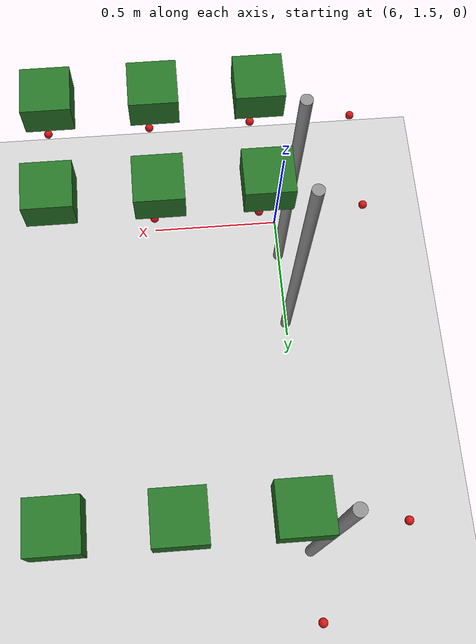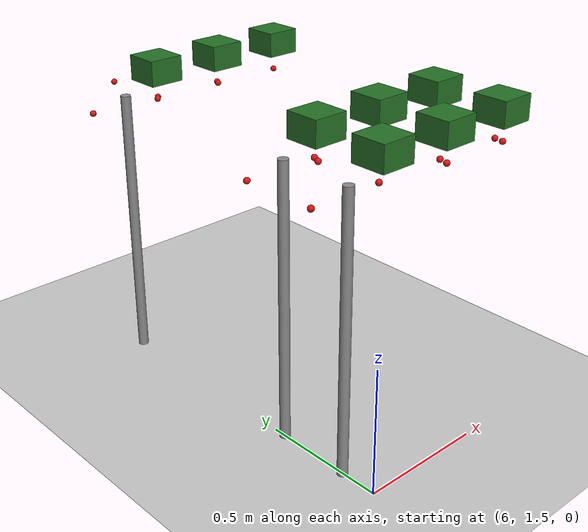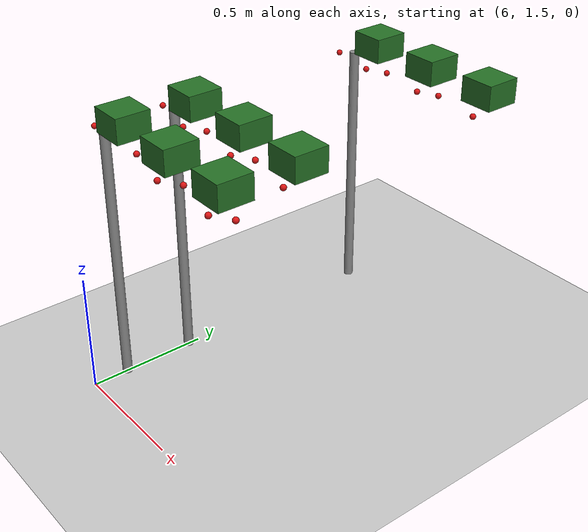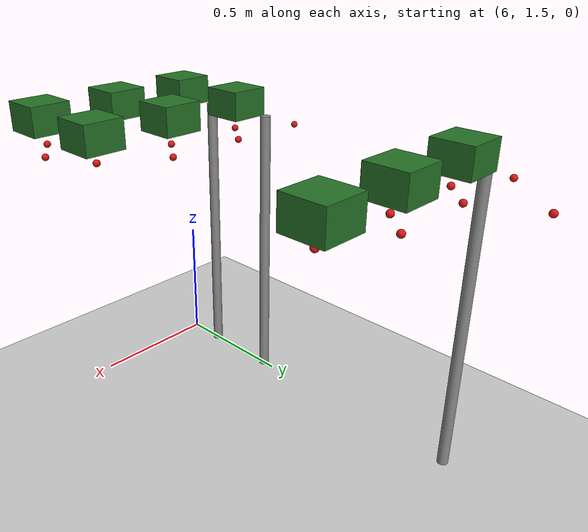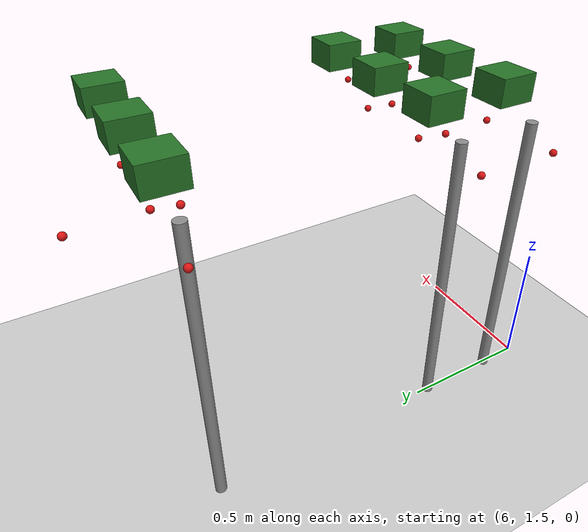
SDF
<sdf version="1.7">
 <world name="irish_polytunnel">
  <include><uri>model://sun</uri></include>
  <include><uri>model://ground_plane</uri></include>
  <model name="row1_L_post3">
   <static>true</static>
   <pose>6.000 1.650 0.550 0 0 0</pose>
   <link name="link">
    <collision name="collision">
     <geometry><cylinder><radius>0.02</radius><length>1.100</length></cylinder></geometry>
    </collision>
    <visual name="visual">
     <geometry><cylinder><radius>0.02</radius><length>1.100</length></cylinder></geometry>
     <material><ambient>0.5 0.5 0.5 1</ambient><diffuse>0.55 0.55 0.55 1</diffuse></material>
    </visual>
   </link>
  </model>
  <model name="row1_L_plant19_berry_1">
   <static>true</static>
   <pose>5.870 1.680 1.050 0 0 0</pose>
   <link name="link">
    <visual name="visual">
     <geometry><sphere><radius>0.012</radius></sphere></geometry>
     <material><ambient>0.75 0.05 0.05 1</ambient><diffuse>0.85 0.08 0.08 1</diffuse></material>
    </visual>
   </link>
  </model>
  <model name="row1_L_plant20_foliage">
   <static>true</static>
   <pose>6.150 1.650 1.180 0 0 0</pose>
   <link name="link">
    <visual name="visual">
     <geometry><box><size>0.14 0.14 0.10</size></box></geometry>
     <material><ambient>0.10 0.35 0.10 1</ambient><diffuse>0.15 0.45 0.15 1</diffuse></material>
    </visual>
   </link>
  </model>
  <model name="row1_L_plant20_berry_1">
   <static>true</static>
   <pose>6.170 1.680 1.050 0 0 0</pose>
   <link name="link">
    <visual name="visual">
     <geometry><sphere><radius>0.012</radius></sphere></geometry>
     <material><ambient>0.75 0.05 0.05 1</ambient><diffuse>0.85 0.08 0.08 1</diffuse></material>
    </visual>
   </link>
  </model>
  <model name="row1_L_plant21_foliage">
   <static>true</static>
   <pose>6.450 1.650 1.180 0 0 0</pose>
   <link name="link">
    <visual name="visual">
     <geometry><box><size>0.14 0.14 0.10</size></box></geometry>
     <material><ambient>0.10 0.35 0.10 1</ambient><diffuse>0.15 0.45 0.15 1</diffuse></material>
    </visual>
   </link>
  </model>
  <model name="row1_L_plant21_berry_0">
   <static>true</static>
   <pose>6.420 1.610 1.070 0 0 0</pose>
   <link name="link">
    <visual name="visual">
     <geometry><sphere><radius>0.012</radius></sphere></geometry>
     <material><ambient>0.75 0.05 0.05 1</ambient><diffuse>0.85 0.08 0.08 1</diffuse></material>
    </visual>
   </link>
  </model>
  <model name="row1_L_plant21_berry_1">
   <static>true</static>
   <pose>6.470 1.680 1.050 0 0 0</pose>
   <link name="link">
    <visual name="visual">
     <geometry><sphere><radius>0.012</radius></sphere></geometry>
     <material><ambient>0.75 0.05 0.05 1</ambient><diffuse>0.85 0.08 0.08 1</diffuse></material>
    </visual>
   </link>
  </model>
  <model name="row1_L_plant22_foliage">
   <static>true</static>
   <pose>6.750 1.650 1.180 0 0 0</pose>
   <link name="link">
    <visual name="visual">
     <geometry><box><size>0.14 0.14 0.10</size></box></geometry>
     <material><ambient>0.10 0.35 0.10 1</ambient><diffuse>0.15 0.45 0.15 1</diffuse></material>
    </visual>
   </link>
  </model>
  <model name="row1_L_plant22_berry_0">
   <static>true</static>
   <pose>6.720 1.610 1.070 0 0 0</pose>
   <link name="link">
    <visual name="visual">
     <geometry><sphere><radius>0.012</radius></sphere></geometry>
     <material><ambient>0.75 0.05 0.05 1</ambient><diffuse>0.85 0.08 0.08 1</diffuse></material>
    </visual>
   </link>
  </model>
  <model name="row1_L_plant22_berry_1">
   <static>true</static>
   <pose>6.770 1.680 1.050 0 0 0</pose>
   <link name="link">
    <visual name="visual">
     <geometry><sphere><radius>0.012</radius></sphere></geometry>
     <material><ambient>0.75 0.05 0.05 1</ambient><diffuse>0.85 0.08 0.08 1</diffuse></material>
    </visual>
   </link>
  </model>
  <model name="row2_L_post3">
   <static>true</static>
   <pose>6.000 2.850 0.550 0 0 0</pose>
   <link name="link">
    <collision name="collision">
     <geometry><cylinder><radius>0.02</radius><length>1.100</length></cylinder></geometry>
    </collision>
    <visual name="visual">
     <geometry><cylinder><radius>0.02</radius><length>1.100</length></cylinder></geometry>
     <material><ambient>0.5 0.5 0.5 1</ambient><diffuse>0.55 0.55 0.55 1</diffuse></material>
    </visual>
   </link>
  </model>
  <model name="row2_L_plant19_berry_1">
   <static>true</static>
   <pose>5.870 2.880 1.050 0 0 0</pose>
   <link name="link">
    <visual name="visual">
     <geometry><sphere><radius>0.012</radius></sphere></geometry>
     <material><ambient>0.75 0.05 0.05 1</ambient><diffuse>0.85 0.08 0.08 1</diffuse></material>
    </visual>
   </link>
  </model>
  <model name="row2_L_plant20_foliage">
   <static>true</static>
   <pose>6.150 2.850 1.180 0 0 0</pose>
   <link name="link">
    <visual name="visual">
     <geometry><box><size>0.14 0.14 0.10</size></box></geometry>
     <material><ambient>0.10 0.35 0.10 1</ambient><diffuse>0.15 0.45 0.15 1</diffuse></material>
    </visual>
   </link>
  </model>
  <model name="row2_L_plant20_berry_0">
   <static>true</static>
   <pose>6.120 2.810 1.070 0 0 0</pose>
   <link name="link">
    <visual name="visual">
     <geometry><sphere><radius>0.012</radius></sphere></geometry>
     <material><ambient>0.75 0.05 0.05 1</ambient><diffuse>0.85 0.08 0.08 1</diffuse></material>
    </visual>
   </link>
  </model>
  <model name="row2_L_plant20_berry_1">
   <static>true</static>
   <pose>6.170 2.880 1.050 0 0 0</pose>
   <link name="link">
    <visual name="visual">
     <geometry><sphere><radius>0.012</radius></sphere></geometry>
     <material><ambient>0.75 0.05 0.05 1</ambient><diffuse>0.85 0.08 0.08 1</diffuse></material>
    </visual>
   </link>
  </model>
  <model name="row2_L_plant21_foliage">
   <static>true</static>
   <pose>6.450 2.850 1.180 0 0 0</pose>
   <link name="link">
    <visual name="visual">
     <geometry><box><size>0.14 0.14 0.10</size></box></geometry>
     <material><ambient>0.10 0.35 0.10 1</ambient><diffuse>0.15 0.45 0.15 1</diffuse></material>
    </visual>
   </link>
  </model>
  <model name="row2_L_plant21_berry_0">
   <static>true</static>
   <pose>6.420 2.810 1.070 0 0 0</pose>
   <link name="link">
    <visual name="visual">
     <geometry><sphere><radius>0.012</radius></sphere></geometry>
     <material><ambient>0.75 0.05 0.05 1</ambient><diffuse>0.85 0.08 0.08 1</diffuse></material>
    </visual>
   </link>
  </model>
  <model name="row2_L_plant21_berry_1">
   <static>true</static>
   <pose>6.470 2.880 1.050 0 0 0</pose>
   <link name="link">
    <visual name="visual">
     <geometry><sphere><radius>0.012</radius></sphere></geometry>
     <material><ambient>0.75 0.05 0.05 1</ambient><diffuse>0.85 0.08 0.08 1</diffuse></material>
    </visual>
   </link>
  </model>
  <model name="row2_L_plant22_foliage">
   <static>true</static>
   <pose>6.750 2.850 1.180 0 0 0</pose>
   <link name="link">
    <visual name="visual">
     <geometry><box><size>0.14 0.14 0.10</size></box></geometry>
     <material><ambient>0.10 0.35 0.10 1</ambient><diffuse>0.15 0.45 0.15 1</diffuse></material>
    </visual>
   </link>
  </model>
  <model name="row2_L_plant22_berry_0">
   <static>true</static>
   <pose>6.720 2.810 1.070 0 0 0</pose>
   <link name="link">
    <visual name="visual">
     <geometry><sphere><radius>0.012</radius></sphere></geometry>
     <material><ambient>0.75 0.05 0.05 1</ambient><diffuse>0.85 0.08 0.08 1</diffuse></material>
    </visual>
   </link>
  </model>
  <model name="row2_R_post3">
   <static>true</static>
   <pose>6.000 1.950 0.550 0 0 0</pose>
   <link name="link">
    <collision name="collision">
     <geometry><cylinder><radius>0.02</radius><length>1.100</length></cylinder></geometry>
    </collision>
    <visual name="visual">
     <geometry><cylinder><radius>0.02</radius><length>1.100</length></cylinder></geometry>
     <material><ambient>0.5 0.5 0.5 1</ambient><diffuse>0.55 0.55 0.55 1</diffuse></material>
    </visual>
   </link>
  </model>
  <model name="row2_R_plant19_berry_1">
   <static>true</static>
   <pose>5.870 1.980 1.050 0 0 0</pose>
   <link name="link">
    <visual name="visual">
     <geometry><sphere><radius>0.012</radius></sphere></geometry>
     <material><ambient>0.75 0.05 0.05 1</ambient><diffuse>0.85 0.08 0.08 1</diffuse></material>
    </visual>
   </link>
  </model>
  <model name="row2_R_plant20_foliage">
   <static>true</static>
   <pose>6.150 1.950 1.180 0 0 0</pose>
   <link name="link">
    <visual name="visual">
     <geometry><box><size>0.14 0.14 0.10</size></box></geometry>
     <material><ambient>0.10 0.35 0.10 1</ambient><diffuse>0.15 0.45 0.15 1</diffuse></material>
    </visual>
   </link>
  </model>
  <model name="row2_R_plant20_berry_0">
   <static>true</static>
   <pose>6.120 1.910 1.070 0 0 0</pose>
   <link name="link">
    <visual name="visual">
     <geometry><sphere><radius>0.012</radius></sphere></geometry>
     <material><ambient>0.75 0.05 0.05 1</ambient><diffuse>0.85 0.08 0.08 1</diffuse></material>
    </visual>
   </link>
  </model>
  <model name="row2_R_plant20_berry_1">
   <static>true</static>
   <pose>6.170 1.980 1.050 0 0 0</pose>
   <link name="link">
    <visual name="visual">
     <geometry><sphere><radius>0.012</radius></sphere></geometry>
     <material><ambient>0.75 0.05 0.05 1</ambient><diffuse>0.85 0.08 0.08 1</diffuse></material>
    </visual>
   </link>
  </model>
  <model name="row2_R_plant21_foliage">
   <static>true</static>
   <pose>6.450 1.950 1.180 0 0 0</pose>
   <link name="link">
    <visual name="visual">
     <geometry><box><size>0.14 0.14 0.10</size></box></geometry>
     <material><ambient>0.10 0.35 0.10 1</ambient><diffuse>0.15 0.45 0.15 1</diffuse></material>
    </visual>
   </link>
  </model>
  <model name="row2_R_plant21_berry_0">
   <static>true</static>
   <pose>6.420 1.910 1.070 0 0 0</pose>
   <link name="link">
    <visual name="visual">
     <geometry><sphere><radius>0.012</radius></sphere></geometry>
     <material><ambient>0.75 0.05 0.05 1</ambient><diffuse>0.85 0.08 0.08 1</diffuse></material>
    </visual>
   </link>
  </model>
  <model name="row2_R_plant21_berry_1">
   <static>true</static>
   <pose>6.470 1.980 1.050 0 0 0</pose>
   <link name="link">
    <visual name="visual">
     <geometry><sphere><radius>0.012</radius></sphere></geometry>
     <material><ambient>0.75 0.05 0.05 1</ambient><diffuse>0.85 0.08 0.08 1</diffuse></material>
    </visual>
   </link>
  </model>
  <model name="row2_R_plant22_foliage">
   <static>true</static>
   <pose>6.750 1.950 1.180 0 0 0</pose>
   <link name="link">
    <visual name="visual">
     <geometry><box><size>0.14 0.14 0.10</size></box></geometry>
     <material><ambient>0.10 0.35 0.10 1</ambient><diffuse>0.15 0.45 0.15 1</diffuse></material>
    </visual>
   </link>
  </model>
  <model name="row2_R_plant22_berry_0">
   <static>true</static>
   <pose>6.720 1.910 1.070 0 0 0</pose>
   <link name="link">
    <visual name="visual">
     <geometry><sphere><radius>0.012</radius></sphere></geometry>
     <material><ambient>0.75 0.05 0.05 1</ambient><diffuse>0.85 0.08 0.08 1</diffuse></material>
    </visual>
   </link>
  </model>
  <model name="row3_R_plant20_berry_0">
   <static>true</static>
   <pose>6.120 3.110 1.070 0 0 0</pose>
   <link name="link">
    <visual name="visual">
     <geometry><sphere><radius>0.012</radius></sphere></geometry>
     <material><ambient>0.75 0.05 0.05 1</ambient><diffuse>0.85 0.08 0.08 1</diffuse></material>
    </visual>
   </link>
  </model>
 </world>
</sdf>
